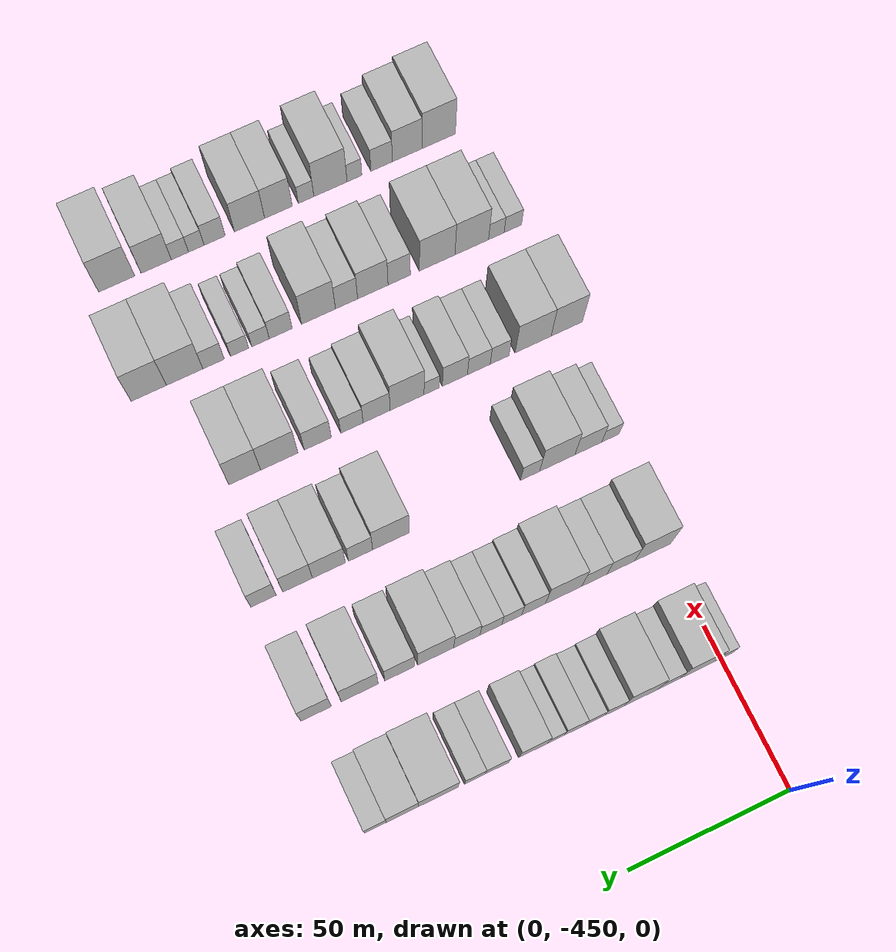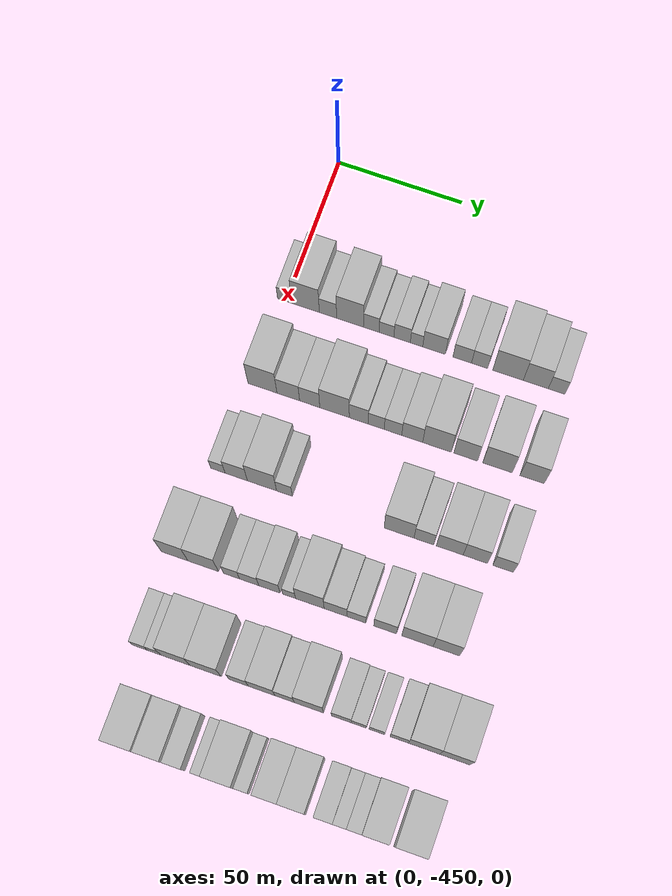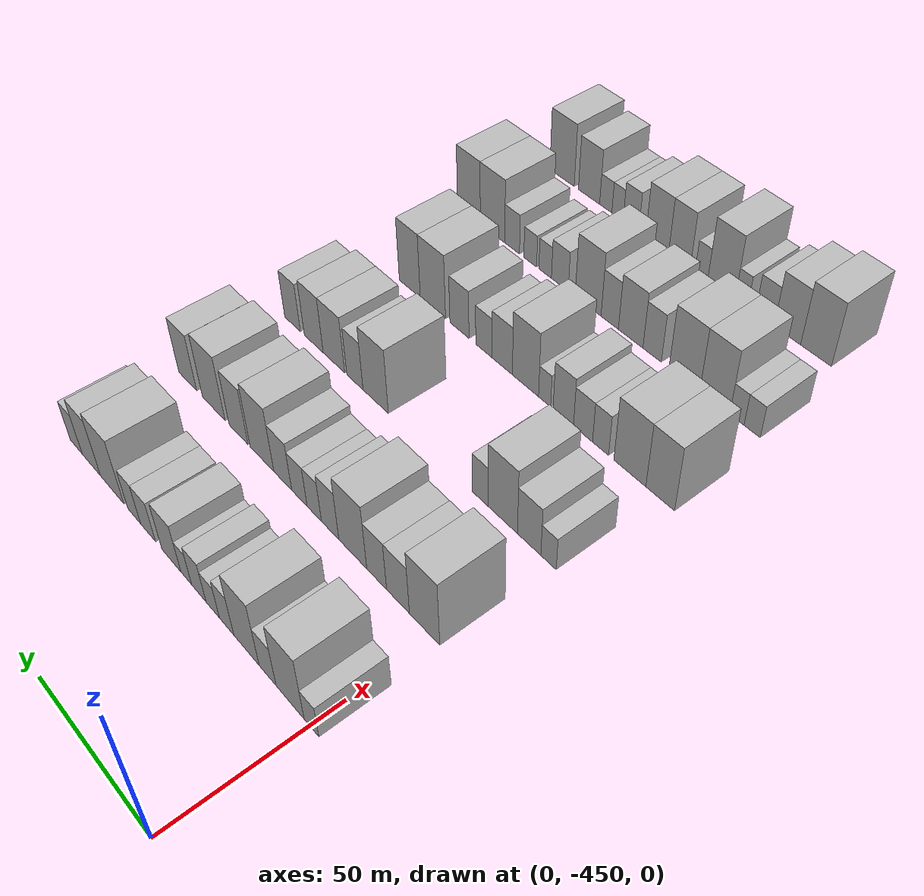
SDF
<sdf version="1.6">
 <world name="default">
  <model name="building_14">
   <static>1</static>
   <pose>50.0000 -450.5928 0 0.000000 0.000000 0.000000</pose>
   <link name="link">
    <pose>0 0 6.00 0 0 0</pose>
    <collision name="collision"><geometry><box><size>20.0000 5.6410 12.0000</size></box></geometry></collision>
    <visual name="visual">
     <cast_shadows>0</cast_shadows>
     <geometry><box><size>20.0000 5.6410 12.0000</size></box></geometry>
     <material>
      <script>
       <uri>model://HANNAS_wall/materials/scripts</uri>
       <uri>model://HANNAS_wall/materials/textures</uri>
       <name>vrc/HANNAS_wall</name>
      </script>
     </material>
    </visual>
   </link>
  </model>
  <model name="building_15">
   <static>1</static>
   <pose>50.0000 -442.2257 0 0.000000 0.000000 0.000000</pose>
   <link name="link">
    <pose>0 0 12.00 0 0 0</pose>
    <collision name="collision"><geometry><box><size>20.0000 11.0932 24.0000</size></box></geometry></collision>
    <visual name="visual">
     <cast_shadows>0</cast_shadows>
     <geometry><box><size>20.0000 11.0932 24.0000</size></box></geometry>
     <material>
      <script>
       <uri>model://HANNAS_wall/materials/scripts</uri>
       <uri>model://HANNAS_wall/materials/textures</uri>
       <name>vrc/HANNAS_wall</name>
      </script>
     </material>
    </visual>
   </link>
  </model>
  <model name="building_16">
   <static>1</static>
   <pose>50.0000 -433.2365 0 0.000000 0.000000 0.000000</pose>
   <link name="link">
    <pose>0 0 7.50 0 0 0</pose>
    <collision name="collision"><geometry><box><size>20.0000 6.8852 15.0000</size></box></geometry></collision>
    <visual name="visual">
     <cast_shadows>0</cast_shadows>
     <geometry><box><size>20.0000 6.8852 15.0000</size></box></geometry>
     <material>
      <script>
       <uri>model://HANNAS_wall/materials/scripts</uri>
       <uri>model://HANNAS_wall/materials/textures</uri>
       <name>vrc/HANNAS_wall</name>
      </script>
     </material>
    </visual>
   </link>
  </model>
  <model name="building_17">
   <static>1</static>
   <pose>50.0000 -424.4515 0 0.000000 0.000000 0.000000</pose>
   <link name="link">
    <pose>0 0 12.00 0 0 0</pose>
    <collision name="collision"><geometry><box><size>20.0000 10.6849 24.0000</size></box></geometry></collision>
    <visual name="visual">
     <cast_shadows>0</cast_shadows>
     <geometry><box><size>20.0000 10.6849 24.0000</size></box></geometry>
     <material>
      <script>
       <uri>model://HANNAS_wall/materials/scripts</uri>
       <uri>model://HANNAS_wall/materials/textures</uri>
       <name>vrc/HANNAS_wall</name>
      </script>
     </material>
    </visual>
   </link>
  </model>
  <model name="building_18">
   <static>1</static>
   <pose>50.0000 -416.0181 0 0.000000 0.000000 0.000000</pose>
   <link name="link">
    <pose>0 0 7.50 0 0 0</pose>
    <collision name="collision"><geometry><box><size>20.0000 6.1817 15.0000</size></box></geometry></collision>
    <visual name="visual">
     <cast_shadows>0</cast_shadows>
     <geometry><box><size>20.0000 6.1817 15.0000</size></box></geometry>
     <material>
      <script>
       <uri>model://HANNAS_wall/materials/scripts</uri>
       <uri>model://HANNAS_wall/materials/textures</uri>
       <name>vrc/HANNAS_wall</name>
      </script>
     </material>
    </visual>
   </link>
  </model>
  <model name="building_19">
   <static>1</static>
   <pose>50.0000 -409.9744 0 0.000000 0.000000 0.000000</pose>
   <link name="link">
    <pose>0 0 6.00 0 0 0</pose>
    <collision name="collision"><geometry><box><size>20.0000 5.9059 12.0000</size></box></geometry></collision>
    <visual name="visual">
     <cast_shadows>0</cast_shadows>
     <geometry><box><size>20.0000 5.9059 12.0000</size></box></geometry>
     <material>
      <script>
       <uri>model://HANNAS_wall/materials/scripts</uri>
       <uri>model://HANNAS_wall/materials/textures</uri>
       <name>vrc/HANNAS_wall</name>
      </script>
     </material>
    </visual>
   </link>
  </model>
  <model name="building_20">
   <static>1</static>
   <pose>50.0000 -403.7748 0 0.000000 0.000000 0.000000</pose>
   <link name="link">
    <pose>0 0 7.50 0 0 0</pose>
    <collision name="collision"><geometry><box><size>20.0000 6.4932 15.0000</size></box></geometry></collision>
    <visual name="visual">
     <cast_shadows>0</cast_shadows>
     <geometry><box><size>20.0000 6.4932 15.0000</size></box></geometry>
     <material>
      <script>
       <uri>model://HANNAS_wall/materials/scripts</uri>
       <uri>model://HANNAS_wall/materials/textures</uri>
       <name>vrc/HANNAS_wall</name>
      </script>
     </material>
    </visual>
   </link>
  </model>
  <model name="building_21">
   <static>1</static>
   <pose>50.0000 -398.0769 0 0.000000 0.000000 0.000000</pose>
   <link name="link">
    <pose>0 0 6.00 0 0 0</pose>
    <collision name="collision"><geometry><box><size>20.0000 4.9025 12.0000</size></box></geometry></collision>
    <visual name="visual">
     <cast_shadows>0</cast_shadows>
     <geometry><box><size>20.0000 4.9025 12.0000</size></box></geometry>
     <material>
      <script>
       <uri>model://HANNAS_wall/materials/scripts</uri>
       <uri>model://HANNAS_wall/materials/textures</uri>
       <name>vrc/HANNAS_wall</name>
      </script>
     </material>
    </visual>
   </link>
  </model>
  <model name="building_22">
   <static>1</static>
   <pose>50.0000 -391.1550 0 0.000000 0.000000 0.000000</pose>
   <link name="link">
    <pose>0 0 9.00 0 0 0</pose>
    <collision name="collision"><geometry><box><size>20.0000 8.9414 18.0000</size></box></geometry></collision>
    <visual name="visual">
     <cast_shadows>0</cast_shadows>
     <geometry><box><size>20.0000 8.9414 18.0000</size></box></geometry>
     <material>
      <script>
       <uri>model://HANNAS_wall/materials/scripts</uri>
       <uri>model://HANNAS_wall/materials/textures</uri>
       <name>vrc/HANNAS_wall</name>
      </script>
     </material>
    </visual>
   </link>
  </model>
  <model name="building_23">
   <static>1</static>
   <pose>50.0000 -380.0222 0 0.000000 0.000000 0.000000</pose>
   <link name="link">
    <pose>0 0 7.50 0 0 0</pose>
    <collision name="collision"><geometry><box><size>20.0000 7.3244 15.0000</size></box></geometry></collision>
    <visual name="visual">
     <cast_shadows>0</cast_shadows>
     <geometry><box><size>20.0000 7.3244 15.0000</size></box></geometry>
     <material>
      <script>
       <uri>model://HANNAS_wall/materials/scripts</uri>
       <uri>model://HANNAS_wall/materials/textures</uri>
       <name>vrc/HANNAS_wall</name>
      </script>
     </material>
    </visual>
   </link>
  </model>
  <model name="building_24">
   <static>1</static>
   <pose>50.0000 -373.2017 0 0.000000 0.000000 0.000000</pose>
   <link name="link">
    <pose>0 0 7.50 0 0 0</pose>
    <collision name="collision"><geometry><box><size>20.0000 6.3165 15.0000</size></box></geometry></collision>
    <visual name="visual">
     <cast_shadows>0</cast_shadows>
     <geometry><box><size>20.0000 6.3165 15.0000</size></box></geometry>
     <material>
      <script>
       <uri>model://HANNAS_wall/materials/scripts</uri>
       <uri>model://HANNAS_wall/materials/textures</uri>
       <name>vrc/HANNAS_wall</name>
      </script>
     </material>
    </visual>
   </link>
  </model>
  <model name="building_25">
   <static>1</static>
   <pose>50.0000 -362.0631 0 0.000000 0.000000 0.000000</pose>
   <link name="link">
    <pose>0 0 12.00 0 0 0</pose>
    <collision name="collision"><geometry><box><size>20.0000 11.9609 24.0000</size></box></geometry></collision>
    <visual name="visual">
     <cast_shadows>0</cast_shadows>
     <geometry><box><size>20.0000 11.9609 24.0000</size></box></geometry>
     <material>
      <script>
       <uri>model://HANNAS_wall/materials/scripts</uri>
       <uri>model://HANNAS_wall/materials/textures</uri>
       <name>vrc/HANNAS_wall</name>
      </script>
     </material>
    </visual>
   </link>
  </model>
  <model name="building_26">
   <static>1</static>
   <pose>50.0000 -351.2172 0 0.000000 0.000000 0.000000</pose>
   <link name="link">
    <pose>0 0 10.50 0 0 0</pose>
    <collision name="collision"><geometry><box><size>20.0000 9.7309 21.0000</size></box></geometry></collision>
    <visual name="visual">
     <cast_shadows>0</cast_shadows>
     <geometry><box><size>20.0000 9.7309 21.0000</size></box></geometry>
     <material>
      <script>
       <uri>model://HANNAS_wall/materials/scripts</uri>
       <uri>model://HANNAS_wall/materials/textures</uri>
       <name>vrc/HANNAS_wall</name>
      </script>
     </material>
    </visual>
   </link>
  </model>
  <model name="building_27">
   <static>1</static>
   <pose>50.0000 -343.0850 0 0.000000 0.000000 0.000000</pose>
   <link name="link">
    <pose>0 0 7.50 0 0 0</pose>
    <collision name="collision"><geometry><box><size>20.0000 6.5336 15.0000</size></box></geometry></collision>
    <visual name="visual">
     <cast_shadows>0</cast_shadows>
     <geometry><box><size>20.0000 6.5336 15.0000</size></box></geometry>
     <material>
      <script>
       <uri>model://HANNAS_wall/materials/scripts</uri>
       <uri>model://HANNAS_wall/materials/textures</uri>
       <name>vrc/HANNAS_wall</name>
      </script>
     </material>
    </visual>
   </link>
  </model>
  <model name="building_144">
   <static>1</static>
   <pose>85.0000 -446.5937 0 0.000000 0.000000 0.000000</pose>
   <link name="link">
    <pose>0 0 12.00 0 0 0</pose>
    <collision name="collision"><geometry><box><size>20.0000 11.4629 24.0000</size></box></geometry></collision>
    <visual name="visual">
     <cast_shadows>0</cast_shadows>
     <geometry><box><size>20.0000 11.4629 24.0000</size></box></geometry>
     <material>
      <script>
       <uri>model://HANNAS_wall/materials/scripts</uri>
       <uri>model://HANNAS_wall/materials/textures</uri>
       <name>vrc/HANNAS_wall</name>
      </script>
     </material>
    </visual>
   </link>
  </model>
  <model name="building_145">
   <static>1</static>
   <pose>85.0000 -436.4054 0 0.000000 0.000000 0.000000</pose>
   <link name="link">
    <pose>0 0 9.00 0 0 0</pose>
    <collision name="collision"><geometry><box><size>20.0000 8.9136 18.0000</size></box></geometry></collision>
    <visual name="visual">
     <cast_shadows>0</cast_shadows>
     <geometry><box><size>20.0000 8.9136 18.0000</size></box></geometry>
     <material>
      <script>
       <uri>model://HANNAS_wall/materials/scripts</uri>
       <uri>model://HANNAS_wall/materials/textures</uri>
       <name>vrc/HANNAS_wall</name>
      </script>
     </material>
    </visual>
   </link>
  </model>
  <model name="building_146">
   <static>1</static>
   <pose>85.0000 -427.9742 0 0.000000 0.000000 0.000000</pose>
   <link name="link">
    <pose>0 0 9.00 0 0 0</pose>
    <collision name="collision"><geometry><box><size>20.0000 7.9489 18.0000</size></box></geometry></collision>
    <visual name="visual">
     <cast_shadows>0</cast_shadows>
     <geometry><box><size>20.0000 7.9489 18.0000</size></box></geometry>
     <material>
      <script>
       <uri>model://HANNAS_wall/materials/scripts</uri>
       <uri>model://HANNAS_wall/materials/textures</uri>
       <name>vrc/HANNAS_wall</name>
      </script>
     </material>
    </visual>
   </link>
  </model>
  <model name="building_147">
   <static>1</static>
   <pose>85.0000 -418.2193 0 0.000000 0.000000 0.000000</pose>
   <link name="link">
    <pose>0 0 12.00 0 0 0</pose>
    <collision name="collision"><geometry><box><size>20.0000 11.5608 24.0000</size></box></geometry></collision>
    <visual name="visual">
     <cast_shadows>0</cast_shadows>
     <geometry><box><size>20.0000 11.5608 24.0000</size></box></geometry>
     <material>
      <script>
       <uri>model://HANNAS_wall/materials/scripts</uri>
       <uri>model://HANNAS_wall/materials/textures</uri>
       <name>vrc/HANNAS_wall</name>
      </script>
     </material>
    </visual>
   </link>
  </model>
  <model name="building_148">
   <static>1</static>
   <pose>85.0000 -408.7284 0 0.000000 0.000000 0.000000</pose>
   <link name="link">
    <pose>0 0 9.00 0 0 0</pose>
    <collision name="collision"><geometry><box><size>20.0000 7.4210 18.0000</size></box></geometry></collision>
    <visual name="visual">
     <cast_shadows>0</cast_shadows>
     <geometry><box><size>20.0000 7.4210 18.0000</size></box></geometry>
     <material>
      <script>
       <uri>model://HANNAS_wall/materials/scripts</uri>
       <uri>model://HANNAS_wall/materials/textures</uri>
       <name>vrc/HANNAS_wall</name>
      </script>
     </material>
    </visual>
   </link>
  </model>
  <model name="building_149">
   <static>1</static>
   <pose>85.0000 -401.8857 0 0.000000 0.000000 0.000000</pose>
   <link name="link">
    <pose>0 0 7.50 0 0 0</pose>
    <collision name="collision"><geometry><box><size>20.0000 6.2645 15.0000</size></box></geometry></collision>
    <visual name="visual">
     <cast_shadows>0</cast_shadows>
     <geometry><box><size>20.0000 6.2645 15.0000</size></box></geometry>
     <material>
      <script>
       <uri>model://HANNAS_wall/materials/scripts</uri>
       <uri>model://HANNAS_wall/materials/textures</uri>
       <name>vrc/HANNAS_wall</name>
      </script>
     </material>
    </visual>
   </link>
  </model>
  <model name="building_150">
   <static>1</static>
   <pose>85.0000 -395.3337 0 0.000000 0.000000 0.000000</pose>
   <link name="link">
    <pose>0 0 7.50 0 0 0</pose>
    <collision name="collision"><geometry><box><size>20.0000 6.8396 15.0000</size></box></geometry></collision>
    <visual name="visual">
     <cast_shadows>0</cast_shadows>
     <geometry><box><size>20.0000 6.8396 15.0000</size></box></geometry>
     <material>
      <script>
       <uri>model://HANNAS_wall/materials/scripts</uri>
       <uri>model://HANNAS_wall/materials/textures</uri>
       <name>vrc/HANNAS_wall</name>
      </script>
     </material>
    </visual>
   </link>
  </model>
  <model name="building_151">
   <static>1</static>
   <pose>85.0000 -387.8292 0 0.000000 0.000000 0.000000</pose>
   <link name="link">
    <pose>0 0 9.00 0 0 0</pose>
    <collision name="collision"><geometry><box><size>20.0000 8.1693 18.0000</size></box></geometry></collision>
    <visual name="visual">
     <cast_shadows>0</cast_shadows>
     <geometry><box><size>20.0000 8.1693 18.0000</size></box></geometry>
     <material>
      <script>
       <uri>model://HANNAS_wall/materials/scripts</uri>
       <uri>model://HANNAS_wall/materials/textures</uri>
       <name>vrc/HANNAS_wall</name>
      </script>
     </material>
    </visual>
   </link>
  </model>
  <model name="building_152">
   <static>1</static>
   <pose>85.0000 -378.1938 0 0.000000 0.000000 0.000000</pose>
   <link name="link">
    <pose>0 0 12.00 0 0 0</pose>
    <collision name="collision"><geometry><box><size>20.0000 11.1014 24.0000</size></box></geometry></collision>
    <visual name="visual">
     <cast_shadows>0</cast_shadows>
     <geometry><box><size>20.0000 11.1014 24.0000</size></box></geometry>
     <material>
      <script>
       <uri>model://HANNAS_wall/materials/scripts</uri>
       <uri>model://HANNAS_wall/materials/textures</uri>
       <name>vrc/HANNAS_wall</name>
      </script>
     </material>
    </visual>
   </link>
  </model>
  <model name="building_153">
   <static>1</static>
   <pose>85.0000 -367.0574 0 0.000000 0.000000 0.000000</pose>
   <link name="link">
    <pose>0 0 10.50 0 0 0</pose>
    <collision name="collision"><geometry><box><size>20.0000 9.1714 21.0000</size></box></geometry></collision>
    <visual name="visual">
     <cast_shadows>0</cast_shadows>
     <geometry><box><size>20.0000 9.1714 21.0000</size></box></geometry>
     <material>
      <script>
       <uri>model://HANNAS_wall/materials/scripts</uri>
       <uri>model://HANNAS_wall/materials/textures</uri>
       <name>vrc/HANNAS_wall</name>
      </script>
     </material>
    </visual>
   </link>
  </model>
  <model name="building_154">
   <static>1</static>
   <pose>85.0000 -354.7837 0 0.000000 0.000000 0.000000</pose>
   <link name="link">
    <pose>0 0 12.00 0 0 0</pose>
    <collision name="collision"><geometry><box><size>20.0000 11.3760 24.0000</size></box></geometry></collision>
    <visual name="visual">
     <cast_shadows>0</cast_shadows>
     <geometry><box><size>20.0000 11.3760 24.0000</size></box></geometry>
     <material>
      <script>
       <uri>model://HANNAS_wall/materials/scripts</uri>
       <uri>model://HANNAS_wall/materials/textures</uri>
       <name>vrc/HANNAS_wall</name>
      </script>
     </material>
    </visual>
   </link>
  </model>
  <model name="building_155">
   <static>1</static>
   <pose>85.0000 -341.4377 0 0.000000 0.000000 0.000000</pose>
   <link name="link">
    <pose>0 0 10.50 0 0 0</pose>
    <collision name="collision"><geometry><box><size>20.0000 9.3159 21.0000</size></box></geometry></collision>
    <visual name="visual">
     <cast_shadows>0</cast_shadows>
     <geometry><box><size>20.0000 9.3159 21.0000</size></box></geometry>
     <material>
      <script>
       <uri>model://HANNAS_wall/materials/scripts</uri>
       <uri>model://HANNAS_wall/materials/textures</uri>
       <name>vrc/HANNAS_wall</name>
      </script>
     </material>
    </visual>
   </link>
  </model>
  <model name="building_255">
   <static>1</static>
   <pose>120.0000 -451.1449 0 0.000000 0.000000 0.000000</pose>
   <link name="link">
    <pose>0 0 6.00 0 0 0</pose>
    <collision name="collision"><geometry><box><size>20.0000 5.6046 12.0000</size></box></geometry></collision>
    <visual name="visual">
     <cast_shadows>0</cast_shadows>
     <geometry><box><size>20.0000 5.6046 12.0000</size></box></geometry>
     <material>
      <script>
       <uri>model://HANNAS_wall/materials/scripts</uri>
       <uri>model://HANNAS_wall/materials/textures</uri>
       <name>vrc/HANNAS_wall</name>
      </script>
     </material>
    </visual>
   </link>
  </model>
  <model name="building_256">
   <static>1</static>
   <pose>120.0000 -443.9745 0 0.000000 0.000000 0.000000</pose>
   <link name="link">
    <pose>0 0 9.00 0 0 0</pose>
    <collision name="collision"><geometry><box><size>20.0000 8.7362 18.0000</size></box></geometry></collision>
    <visual name="visual">
     <cast_shadows>0</cast_shadows>
     <geometry><box><size>20.0000 8.7362 18.0000</size></box></geometry>
     <material>
      <script>
       <uri>model://HANNAS_wall/materials/scripts</uri>
       <uri>model://HANNAS_wall/materials/textures</uri>
       <name>vrc/HANNAS_wall</name>
      </script>
     </material>
    </visual>
   </link>
  </model>
  <model name="building_257">
   <static>1</static>
   <pose>120.0000 -433.9365 0 0.000000 0.000000 0.000000</pose>
   <link name="link">
    <pose>0 0 12.00 0 0 0</pose>
    <collision name="collision"><geometry><box><size>20.0000 11.3397 24.0000</size></box></geometry></collision>
    <visual name="visual">
     <cast_shadows>0</cast_shadows>
     <geometry><box><size>20.0000 11.3397 24.0000</size></box></geometry>
     <material>
      <script>
       <uri>model://HANNAS_wall/materials/scripts</uri>
       <uri>model://HANNAS_wall/materials/textures</uri>
       <name>vrc/HANNAS_wall</name>
      </script>
     </material>
    </visual>
   </link>
  </model>
  <model name="building_258">
   <static>1</static>
   <pose>120.0000 -425.1990 0 0.000000 0.000000 0.000000</pose>
   <link name="link">
    <pose>0 0 7.50 0 0 0</pose>
    <collision name="collision"><geometry><box><size>20.0000 6.1353 15.0000</size></box></geometry></collision>
    <visual name="visual">
     <cast_shadows>0</cast_shadows>
     <geometry><box><size>20.0000 6.1353 15.0000</size></box></geometry>
     <material>
      <script>
       <uri>model://HANNAS_wall/materials/scripts</uri>
       <uri>model://HANNAS_wall/materials/textures</uri>
       <name>vrc/HANNAS_wall</name>
      </script>
     </material>
    </visual>
   </link>
  </model>
  <model name="building_259">
   <static>1</static>
   <pose>120.0000 -380.9547 0 0.000000 0.000000 0.000000</pose>
   <link name="link">
    <pose>0 0 12.00 0 0 0</pose>
    <collision name="collision"><geometry><box><size>20.0000 11.4512 24.0000</size></box></geometry></collision>
    <visual name="visual">
     <cast_shadows>0</cast_shadows>
     <geometry><box><size>20.0000 11.4512 24.0000</size></box></geometry>
     <material>
      <script>
       <uri>model://HANNAS_wall/materials/scripts</uri>
       <uri>model://HANNAS_wall/materials/textures</uri>
       <name>vrc/HANNAS_wall</name>
      </script>
     </material>
    </visual>
   </link>
  </model>
  <model name="building_260">
   <static>1</static>
   <pose>120.0000 -371.4617 0 0.000000 0.000000 0.000000</pose>
   <link name="link">
    <pose>0 0 9.00 0 0 0</pose>
    <collision name="collision"><geometry><box><size>20.0000 7.5347 18.0000</size></box></geometry></collision>
    <visual name="visual">
     <cast_shadows>0</cast_shadows>
     <geometry><box><size>20.0000 7.5347 18.0000</size></box></geometry>
     <material>
      <script>
       <uri>model://HANNAS_wall/materials/scripts</uri>
       <uri>model://HANNAS_wall/materials/textures</uri>
       <name>vrc/HANNAS_wall</name>
      </script>
     </material>
    </visual>
   </link>
  </model>
  <model name="building_261">
   <static>1</static>
   <pose>120.0000 -361.5631 0 0.000000 0.000000 0.000000</pose>
   <link name="link">
    <pose>0 0 10.50 0 0 0</pose>
    <collision name="collision"><geometry><box><size>20.0000 10.2625 21.0000</size></box></geometry></collision>
    <visual name="visual">
     <cast_shadows>0</cast_shadows>
     <geometry><box><size>20.0000 10.2625 21.0000</size></box></geometry>
     <material>
      <script>
       <uri>model://HANNAS_wall/materials/scripts</uri>
       <uri>model://HANNAS_wall/materials/textures</uri>
       <name>vrc/HANNAS_wall</name>
      </script>
     </material>
    </visual>
   </link>
  </model>
  <model name="building_262">
   <static>1</static>
   <pose>120.0000 -351.8129 0 0.000000 0.000000 0.000000</pose>
   <link name="link">
    <pose>0 0 10.50 0 0 0</pose>
    <collision name="collision"><geometry><box><size>20.0000 9.2379 21.0000</size></box></geometry></collision>
    <visual name="visual">
     <cast_shadows>0</cast_shadows>
     <geometry><box><size>20.0000 9.2379 21.0000</size></box></geometry>
     <material>
      <script>
       <uri>model://HANNAS_wall/materials/scripts</uri>
       <uri>model://HANNAS_wall/materials/textures</uri>
       <name>vrc/HANNAS_wall</name>
      </script>
     </material>
    </visual>
   </link>
  </model>
  <model name="building_263">
   <static>1</static>
   <pose>120.0000 -341.2696 0 0.000000 0.000000 0.000000</pose>
   <link name="link">
    <pose>0 0 9.00 0 0 0</pose>
    <collision name="collision"><geometry><box><size>20.0000 7.8487 18.0000</size></box></geometry></collision>
    <visual name="visual">
     <cast_shadows>0</cast_shadows>
     <geometry><box><size>20.0000 7.8487 18.0000</size></box></geometry>
     <material>
      <script>
       <uri>model://HANNAS_wall/materials/scripts</uri>
       <uri>model://HANNAS_wall/materials/textures</uri>
       <name>vrc/HANNAS_wall</name>
      </script>
     </material>
    </visual>
   </link>
  </model>
  <model name="building_376">
   <static>1</static>
   <pose>155.0000 -454.7123 0 0.000000 0.000000 0.000000</pose>
   <link name="link">
    <pose>0 0 12.00 0 0 0</pose>
    <collision name="collision"><geometry><box><size>20.0000 10.2747 24.0000</size></box></geometry></collision>
    <visual name="visual">
     <cast_shadows>0</cast_shadows>
     <geometry><box><size>20.0000 10.2747 24.0000</size></box></geometry>
     <material>
      <script>
       <uri>model://HANNAS_wall/materials/scripts</uri>
       <uri>model://HANNAS_wall/materials/textures</uri>
       <name>vrc/HANNAS_wall</name>
      </script>
     </material>
    </visual>
   </link>
  </model>
  <model name="building_377">
   <static>1</static>
   <pose>155.0000 -443.6824 0 0.000000 0.000000 0.000000</pose>
   <link name="link">
    <pose>0 0 12.00 0 0 0</pose>
    <collision name="collision"><geometry><box><size>20.0000 11.7852 24.0000</size></box></geometry></collision>
    <visual name="visual">
     <cast_shadows>0</cast_shadows>
     <geometry><box><size>20.0000 11.7852 24.0000</size></box></geometry>
     <material>
      <script>
       <uri>model://HANNAS_wall/materials/scripts</uri>
       <uri>model://HANNAS_wall/materials/textures</uri>
       <name>vrc/HANNAS_wall</name>
      </script>
     </material>
    </visual>
   </link>
  </model>
  <model name="building_378">
   <static>1</static>
   <pose>155.0000 -432.7246 0 0.000000 0.000000 0.000000</pose>
   <link name="link">
    <pose>0 0 7.50 0 0 0</pose>
    <collision name="collision"><geometry><box><size>20.0000 6.1304 15.0000</size></box></geometry></collision>
    <visual name="visual">
     <cast_shadows>0</cast_shadows>
     <geometry><box><size>20.0000 6.1304 15.0000</size></box></geometry>
     <material>
      <script>
       <uri>model://HANNAS_wall/materials/scripts</uri>
       <uri>model://HANNAS_wall/materials/textures</uri>
       <name>vrc/HANNAS_wall</name>
      </script>
     </material>
    </visual>
   </link>
  </model>
  <model name="building_379">
   <static>1</static>
   <pose>155.0000 -425.9634 0 0.000000 0.000000 0.000000</pose>
   <link name="link">
    <pose>0 0 7.50 0 0 0</pose>
    <collision name="collision"><geometry><box><size>20.0000 7.3920 15.0000</size></box></geometry></collision>
    <visual name="visual">
     <cast_shadows>0</cast_shadows>
     <geometry><box><size>20.0000 7.3920 15.0000</size></box></geometry>
     <material>
      <script>
       <uri>model://HANNAS_wall/materials/scripts</uri>
       <uri>model://HANNAS_wall/materials/textures</uri>
       <name>vrc/HANNAS_wall</name>
      </script>
     </material>
    </visual>
   </link>
  </model>
  <model name="building_380">
   <static>1</static>
   <pose>155.0000 -418.2074 0 0.000000 0.000000 0.000000</pose>
   <link name="link">
    <pose>0 0 9.00 0 0 0</pose>
    <collision name="collision"><geometry><box><size>20.0000 8.1200 18.0000</size></box></geometry></collision>
    <visual name="visual">
     <cast_shadows>0</cast_shadows>
     <geometry><box><size>20.0000 8.1200 18.0000</size></box></geometry>
     <material>
      <script>
       <uri>model://HANNAS_wall/materials/scripts</uri>
       <uri>model://HANNAS_wall/materials/textures</uri>
       <name>vrc/HANNAS_wall</name>
      </script>
     </material>
    </visual>
   </link>
  </model>
  <model name="building_381">
   <static>1</static>
   <pose>155.0000 -410.6882 0 0.000000 0.000000 0.000000</pose>
   <link name="link">
    <pose>0 0 6.00 0 0 0</pose>
    <collision name="collision"><geometry><box><size>20.0000 4.9184 12.0000</size></box></geometry></collision>
    <visual name="visual">
     <cast_shadows>0</cast_shadows>
     <geometry><box><size>20.0000 4.9184 12.0000</size></box></geometry>
     <material>
      <script>
       <uri>model://HANNAS_wall/materials/scripts</uri>
       <uri>model://HANNAS_wall/materials/textures</uri>
       <name>vrc/HANNAS_wall</name>
      </script>
     </material>
    </visual>
   </link>
  </model>
  <model name="building_382">
   <static>1</static>
   <pose>155.0000 -402.7854 0 0.000000 0.000000 0.000000</pose>
   <link name="link">
    <pose>0 0 12.00 0 0 0</pose>
    <collision name="collision"><geometry><box><size>20.0000 10.8872 24.0000</size></box></geometry></collision>
    <visual name="visual">
     <cast_shadows>0</cast_shadows>
     <geometry><box><size>20.0000 10.8872 24.0000</size></box></geometry>
     <material>
      <script>
       <uri>model://HANNAS_wall/materials/scripts</uri>
       <uri>model://HANNAS_wall/materials/textures</uri>
       <name>vrc/HANNAS_wall</name>
      </script>
     </material>
    </visual>
   </link>
  </model>
  <model name="building_383">
   <static>1</static>
   <pose>155.0000 -393.0057 0 0.000000 0.000000 0.000000</pose>
   <link name="link">
    <pose>0 0 9.00 0 0 0</pose>
    <collision name="collision"><geometry><box><size>20.0000 8.6722 18.0000</size></box></geometry></collision>
    <visual name="visual">
     <cast_shadows>0</cast_shadows>
     <geometry><box><size>20.0000 8.6722 18.0000</size></box></geometry>
     <material>
      <script>
       <uri>model://HANNAS_wall/materials/scripts</uri>
       <uri>model://HANNAS_wall/materials/textures</uri>
       <name>vrc/HANNAS_wall</name>
      </script>
     </material>
    </visual>
   </link>
  </model>
  <model name="building_384">
   <static>1</static>
   <pose>155.0000 -385.1058 0 0.000000 0.000000 0.000000</pose>
   <link name="link">
    <pose>0 0 7.50 0 0 0</pose>
    <collision name="collision"><geometry><box><size>20.0000 7.1275 15.0000</size></box></geometry></collision>
    <visual name="visual">
     <cast_shadows>0</cast_shadows>
     <geometry><box><size>20.0000 7.1275 15.0000</size></box></geometry>
     <material>
      <script>
       <uri>model://HANNAS_wall/materials/scripts</uri>
       <uri>model://HANNAS_wall/materials/textures</uri>
       <name>vrc/HANNAS_wall</name>
      </script>
     </material>
    </visual>
   </link>
  </model>
  <model name="building_385">
   <static>1</static>
   <pose>155.0000 -374.2365 0 0.000000 0.000000 0.000000</pose>
   <link name="link">
    <pose>0 0 9.00 0 0 0</pose>
    <collision name="collision"><geometry><box><size>20.0000 8.6112 18.0000</size></box></geometry></collision>
    <visual name="visual">
     <cast_shadows>0</cast_shadows>
     <geometry><box><size>20.0000 8.6112 18.0000</size></box></geometry>
     <material>
      <script>
       <uri>model://HANNAS_wall/materials/scripts</uri>
       <uri>model://HANNAS_wall/materials/textures</uri>
       <name>vrc/HANNAS_wall</name>
      </script>
     </material>
    </visual>
   </link>
  </model>
  <model name="building_386">
   <static>1</static>
   <pose>155.0000 -362.0347 0 0.000000 0.000000 0.000000</pose>
   <link name="link">
    <pose>0 0 12.00 0 0 0</pose>
    <collision name="collision"><geometry><box><size>20.0000 11.7925 24.0000</size></box></geometry></collision>
    <visual name="visual">
     <cast_shadows>0</cast_shadows>
     <geometry><box><size>20.0000 11.7925 24.0000</size></box></geometry>
     <material>
      <script>
       <uri>model://HANNAS_wall/materials/scripts</uri>
       <uri>model://HANNAS_wall/materials/textures</uri>
       <name>vrc/HANNAS_wall</name>
      </script>
     </material>
    </visual>
   </link>
  </model>
  <model name="building_387">
   <static>1</static>
   <pose>155.0000 -351.1388 0 0.000000 0.000000 0.000000</pose>
   <link name="link">
    <pose>0 0 12.00 0 0 0</pose>
    <collision name="collision"><geometry><box><size>20.0000 9.9992 24.0000</size></box></geometry></collision>
    <visual name="visual">
     <cast_shadows>0</cast_shadows>
     <geometry><box><size>20.0000 9.9992 24.0000</size></box></geometry>
     <material>
      <script>
       <uri>model://HANNAS_wall/materials/scripts</uri>
       <uri>model://HANNAS_wall/materials/textures</uri>
       <name>vrc/HANNAS_wall</name>
      </script>
     </material>
    </visual>
   </link>
  </model>
  <model name="building_498">
   <static>1</static>
   <pose>190.0000 -454.4238 0 0.000000 0.000000 0.000000</pose>
   <link name="link">
    <pose>0 0 6.00 0 0 0</pose>
    <collision name="collision"><geometry><box><size>20.0000 5.7596 12.0000</size></box></geometry></collision>
    <visual name="visual">
     <cast_shadows>0</cast_shadows>
     <geometry><box><size>20.0000 5.7596 12.0000</size></box></geometry>
     <material>
      <script>
       <uri>model://HANNAS_wall/materials/scripts</uri>
       <uri>model://HANNAS_wall/materials/textures</uri>
       <name>vrc/HANNAS_wall</name>
      </script>
     </material>
    </visual>
   </link>
  </model>
  <model name="building_499">
   <static>1</static>
   <pose>190.0000 -448.9564 0 0.000000 0.000000 0.000000</pose>
   <link name="link">
    <pose>0 0 6.00 0 0 0</pose>
    <collision name="collision"><geometry><box><size>20.0000 5.1751 12.0000</size></box></geometry></collision>
    <visual name="visual">
     <cast_shadows>0</cast_shadows>
     <geometry><box><size>20.0000 5.1751 12.0000</size></box></geometry>
     <material>
      <script>
       <uri>model://HANNAS_wall/materials/scripts</uri>
       <uri>model://HANNAS_wall/materials/textures</uri>
       <name>vrc/HANNAS_wall</name>
      </script>
     </material>
    </visual>
   </link>
  </model>
  <model name="building_500">
   <static>1</static>
   <pose>190.0000 -440.8129 0 0.000000 0.000000 0.000000</pose>
   <link name="link">
    <pose>0 0 12.00 0 0 0</pose>
    <collision name="collision"><geometry><box><size>20.0000 11.1120 24.0000</size></box></geometry></collision>
    <visual name="visual">
     <cast_shadows>0</cast_shadows>
     <geometry><box><size>20.0000 11.1120 24.0000</size></box></geometry>
     <material>
      <script>
       <uri>model://HANNAS_wall/materials/scripts</uri>
       <uri>model://HANNAS_wall/materials/textures</uri>
       <name>vrc/HANNAS_wall</name>
      </script>
     </material>
    </visual>
   </link>
  </model>
  <model name="building_501">
   <static>1</static>
   <pose>190.0000 -429.4022 0 0.000000 0.000000 0.000000</pose>
   <link name="link">
    <pose>0 0 12.00 0 0 0</pose>
    <collision name="collision"><geometry><box><size>20.0000 11.7095 24.0000</size></box></geometry></collision>
    <visual name="visual">
     <cast_shadows>0</cast_shadows>
     <geometry><box><size>20.0000 11.7095 24.0000</size></box></geometry>
     <material>
      <script>
       <uri>model://HANNAS_wall/materials/scripts</uri>
       <uri>model://HANNAS_wall/materials/textures</uri>
       <name>vrc/HANNAS_wall</name>
      </script>
     </material>
    </visual>
   </link>
  </model>
  <model name="building_502">
   <static>1</static>
   <pose>190.0000 -416.9068 0 0.000000 0.000000 0.000000</pose>
   <link name="link">
    <pose>0 0 9.00 0 0 0</pose>
    <collision name="collision"><geometry><box><size>20.0000 7.2812 18.0000</size></box></geometry></collision>
    <visual name="visual">
     <cast_shadows>0</cast_shadows>
     <geometry><box><size>20.0000 7.2812 18.0000</size></box></geometry>
     <material>
      <script>
       <uri>model://HANNAS_wall/materials/scripts</uri>
       <uri>model://HANNAS_wall/materials/textures</uri>
       <name>vrc/HANNAS_wall</name>
      </script>
     </material>
    </visual>
   </link>
  </model>
  <model name="building_503">
   <static>1</static>
   <pose>190.0000 -408.2940 0 0.000000 0.000000 0.000000</pose>
   <link name="link">
    <pose>0 0 10.50 0 0 0</pose>
    <collision name="collision"><geometry><box><size>20.0000 9.9443 21.0000</size></box></geometry></collision>
    <visual name="visual">
     <cast_shadows>0</cast_shadows>
     <geometry><box><size>20.0000 9.9443 21.0000</size></box></geometry>
     <material>
      <script>
       <uri>model://HANNAS_wall/materials/scripts</uri>
       <uri>model://HANNAS_wall/materials/textures</uri>
       <name>vrc/HANNAS_wall</name>
      </script>
     </material>
    </visual>
   </link>
  </model>
  <model name="building_504">
   <static>1</static>
   <pose>190.0000 -399.7198 0 0.000000 0.000000 0.000000</pose>
   <link name="link">
    <pose>0 0 9.00 0 0 0</pose>
    <collision name="collision"><geometry><box><size>20.0000 7.2041 18.0000</size></box></geometry></collision>
    <visual name="visual">
     <cast_shadows>0</cast_shadows>
     <geometry><box><size>20.0000 7.2041 18.0000</size></box></geometry>
     <material>
      <script>
       <uri>model://HANNAS_wall/materials/scripts</uri>
       <uri>model://HANNAS_wall/materials/textures</uri>
       <name>vrc/HANNAS_wall</name>
      </script>
     </material>
    </visual>
   </link>
  </model>
  <model name="building_505">
   <static>1</static>
   <pose>190.0000 -390.6186 0 0.000000 0.000000 0.000000</pose>
   <link name="link">
    <pose>0 0 12.00 0 0 0</pose>
    <collision name="collision"><geometry><box><size>20.0000 10.9984 24.0000</size></box></geometry></collision>
    <visual name="visual">
     <cast_shadows>0</cast_shadows>
     <geometry><box><size>20.0000 10.9984 24.0000</size></box></geometry>
     <material>
      <script>
       <uri>model://HANNAS_wall/materials/scripts</uri>
       <uri>model://HANNAS_wall/materials/textures</uri>
       <name>vrc/HANNAS_wall</name>
      </script>
     </material>
    </visual>
   </link>
  </model>
  <model name="building_506">
   <static>1</static>
   <pose>190.0000 -378.4301 0 0.000000 0.000000 0.000000</pose>
   <link name="link">
    <pose>0 0 7.50 0 0 0</pose>
    <collision name="collision"><geometry><box><size>20.0000 7.3786 15.0000</size></box></geometry></collision>
    <visual name="visual">
     <cast_shadows>0</cast_shadows>
     <geometry><box><size>20.0000 7.3786 15.0000</size></box></geometry>
     <material>
      <script>
       <uri>model://HANNAS_wall/materials/scripts</uri>
       <uri>model://HANNAS_wall/materials/textures</uri>
       <name>vrc/HANNAS_wall</name>
      </script>
     </material>
    </visual>
   </link>
  </model>
  <model name="building_507">
   <static>1</static>
   <pose>190.0000 -371.9300 0 0.000000 0.000000 0.000000</pose>
   <link name="link">
    <pose>0 0 6.00 0 0 0</pose>
    <collision name="collision"><geometry><box><size>20.0000 5.6215 12.0000</size></box></geometry></collision>
    <visual name="visual">
     <cast_shadows>0</cast_shadows>
     <geometry><box><size>20.0000 5.6215 12.0000</size></box></geometry>
     <material>
      <script>
       <uri>model://HANNAS_wall/materials/scripts</uri>
       <uri>model://HANNAS_wall/materials/textures</uri>
       <name>vrc/HANNAS_wall</name>
      </script>
     </material>
    </visual>
   </link>
  </model>
  <model name="building_508">
   <static>1</static>
   <pose>190.0000 -365.2112 0 0.000000 0.000000 0.000000</pose>
   <link name="link">
    <pose>0 0 6.00 0 0 0</pose>
    <collision name="collision"><geometry><box><size>20.0000 5.8161 12.0000</size></box></geometry></collision>
    <visual name="visual">
     <cast_shadows>0</cast_shadows>
     <geometry><box><size>20.0000 5.8161 12.0000</size></box></geometry>
     <material>
      <script>
       <uri>model://HANNAS_wall/materials/scripts</uri>
       <uri>model://HANNAS_wall/materials/textures</uri>
       <name>vrc/HANNAS_wall</name>
      </script>
     </material>
    </visual>
   </link>
  </model>
  <model name="building_509">
   <static>1</static>
   <pose>190.0000 -356.8786 0 0.000000 0.000000 0.000000</pose>
   <link name="link">
    <pose>0 0 7.50 0 0 0</pose>
    <collision name="collision"><geometry><box><size>20.0000 6.8492 15.0000</size></box></geometry></collision>
    <visual name="visual">
     <cast_shadows>0</cast_shadows>
     <geometry><box><size>20.0000 6.8492 15.0000</size></box></geometry>
     <material>
      <script>
       <uri>model://HANNAS_wall/materials/scripts</uri>
       <uri>model://HANNAS_wall/materials/textures</uri>
       <name>vrc/HANNAS_wall</name>
      </script>
     </material>
    </visual>
   </link>
  </model>
  <model name="building_510">
   <static>1</static>
   <pose>190.0000 -347.6498 0 0.000000 0.000000 0.000000</pose>
   <link name="link">
    <pose>0 0 12.00 0 0 0</pose>
    <collision name="collision"><geometry><box><size>20.0000 11.6083 24.0000</size></box></geometry></collision>
    <visual name="visual">
     <cast_shadows>0</cast_shadows>
     <geometry><box><size>20.0000 11.6083 24.0000</size></box></geometry>
     <material>
      <script>
       <uri>model://HANNAS_wall/materials/scripts</uri>
       <uri>model://HANNAS_wall/materials/textures</uri>
       <name>vrc/HANNAS_wall</name>
      </script>
     </material>
    </visual>
   </link>
  </model>
  <model name="building_511">
   <static>1</static>
   <pose>190.0000 -336.2783 0 0.000000 0.000000 0.000000</pose>
   <link name="link">
    <pose>0 0 12.00 0 0 0</pose>
    <collision name="collision"><geometry><box><size>20.0000 11.1348 24.0000</size></box></geometry></collision>
    <visual name="visual">
     <cast_shadows>0</cast_shadows>
     <geometry><box><size>20.0000 11.1348 24.0000</size></box></geometry>
     <material>
      <script>
       <uri>model://HANNAS_wall/materials/scripts</uri>
       <uri>model://HANNAS_wall/materials/textures</uri>
       <name>vrc/HANNAS_wall</name>
      </script>
     </material>
    </visual>
   </link>
  </model>
  <model name="building_622">
   <static>1</static>
   <pose>225.0000 -446.7912 0 0.000000 0.000000 0.000000</pose>
   <link name="link">
    <pose>0 0 12.00 0 0 0</pose>
    <collision name="collision"><geometry><box><size>20.0000 11.2035 24.0000</size></box></geometry></collision>
    <visual name="visual">
     <cast_shadows>0</cast_shadows>
     <geometry><box><size>20.0000 11.2035 24.0000</size></box></geometry>
     <material>
      <script>
       <uri>model://HANNAS_wall/materials/scripts</uri>
       <uri>model://HANNAS_wall/materials/textures</uri>
       <name>vrc/HANNAS_wall</name>
      </script>
     </material>
    </visual>
   </link>
  </model>
  <model name="building_623">
   <static>1</static>
   <pose>225.0000 -436.2375 0 0.000000 0.000000 0.000000</pose>
   <link name="link">
    <pose>0 0 10.50 0 0 0</pose>
    <collision name="collision"><geometry><box><size>20.0000 9.9038 21.0000</size></box></geometry></collision>
    <visual name="visual">
     <cast_shadows>0</cast_shadows>
     <geometry><box><size>20.0000 9.9038 21.0000</size></box></geometry>
     <material>
      <script>
       <uri>model://HANNAS_wall/materials/scripts</uri>
       <uri>model://HANNAS_wall/materials/textures</uri>
       <name>vrc/HANNAS_wall</name>
      </script>
     </material>
    </visual>
   </link>
  </model>
  <model name="building_624">
   <static>1</static>
   <pose>225.0000 -427.7142 0 0.000000 0.000000 0.000000</pose>
   <link name="link">
    <pose>0 0 7.50 0 0 0</pose>
    <collision name="collision"><geometry><box><size>20.0000 7.1429 15.0000</size></box></geometry></collision>
    <visual name="visual">
     <cast_shadows>0</cast_shadows>
     <geometry><box><size>20.0000 7.1429 15.0000</size></box></geometry>
     <material>
      <script>
       <uri>model://HANNAS_wall/materials/scripts</uri>
       <uri>model://HANNAS_wall/materials/textures</uri>
       <name>vrc/HANNAS_wall</name>
      </script>
     </material>
    </visual>
   </link>
  </model>
  <model name="building_625">
   <static>1</static>
   <pose>225.0000 -418.6918 0 0.000000 0.000000 0.000000</pose>
   <link name="link">
    <pose>0 0 6.00 0 0 0</pose>
    <collision name="collision"><geometry><box><size>20.0000 4.9018 12.0000</size></box></geometry></collision>
    <visual name="visual">
     <cast_shadows>0</cast_shadows>
     <geometry><box><size>20.0000 4.9018 12.0000</size></box></geometry>
     <material>
      <script>
       <uri>model://HANNAS_wall/materials/scripts</uri>
       <uri>model://HANNAS_wall/materials/textures</uri>
       <name>vrc/HANNAS_wall</name>
      </script>
     </material>
    </visual>
   </link>
  </model>
  <model name="building_626">
   <static>1</static>
   <pose>225.0000 -410.7535 0 0.000000 0.000000 0.000000</pose>
   <link name="link">
    <pose>0 0 12.00 0 0 0</pose>
    <collision name="collision"><geometry><box><size>20.0000 10.9749 24.0000</size></box></geometry></collision>
    <visual name="visual">
     <cast_shadows>0</cast_shadows>
     <geometry><box><size>20.0000 10.9749 24.0000</size></box></geometry>
     <material>
      <script>
       <uri>model://HANNAS_wall/materials/scripts</uri>
       <uri>model://HANNAS_wall/materials/textures</uri>
       <name>vrc/HANNAS_wall</name>
      </script>
     </material>
    </visual>
   </link>
  </model>
  <model name="building_627">
   <static>1</static>
   <pose>225.0000 -402.7015 0 0.000000 0.000000 0.000000</pose>
   <link name="link">
    <pose>0 0 6.00 0 0 0</pose>
    <collision name="collision"><geometry><box><size>20.0000 5.1290 12.0000</size></box></geometry></collision>
    <visual name="visual">
     <cast_shadows>0</cast_shadows>
     <geometry><box><size>20.0000 5.1290 12.0000</size></box></geometry>
     <material>
      <script>
       <uri>model://HANNAS_wall/materials/scripts</uri>
       <uri>model://HANNAS_wall/materials/textures</uri>
       <name>vrc/HANNAS_wall</name>
      </script>
     </material>
    </visual>
   </link>
  </model>
  <model name="building_628">
   <static>1</static>
   <pose>225.0000 -393.6058 0 0.000000 0.000000 0.000000</pose>
   <link name="link">
    <pose>0 0 10.50 0 0 0</pose>
    <collision name="collision"><geometry><box><size>20.0000 9.0623 21.0000</size></box></geometry></collision>
    <visual name="visual">
     <cast_shadows>0</cast_shadows>
     <geometry><box><size>20.0000 9.0623 21.0000</size></box></geometry>
     <material>
      <script>
       <uri>model://HANNAS_wall/materials/scripts</uri>
       <uri>model://HANNAS_wall/materials/textures</uri>
       <name>vrc/HANNAS_wall</name>
      </script>
     </material>
    </visual>
   </link>
  </model>
  <model name="building_629">
   <static>1</static>
   <pose>225.0000 -384.1359 0 0.000000 0.000000 0.000000</pose>
   <link name="link">
    <pose>0 0 10.50 0 0 0</pose>
    <collision name="collision"><geometry><box><size>20.0000 9.8775 21.0000</size></box></geometry></collision>
    <visual name="visual">
     <cast_shadows>0</cast_shadows>
     <geometry><box><size>20.0000 9.8775 21.0000</size></box></geometry>
     <material>
      <script>
       <uri>model://HANNAS_wall/materials/scripts</uri>
       <uri>model://HANNAS_wall/materials/textures</uri>
       <name>vrc/HANNAS_wall</name>
      </script>
     </material>
    </visual>
   </link>
  </model>
  <model name="building_630">
   <static>1</static>
   <pose>225.0000 -372.7513 0 0.000000 0.000000 0.000000</pose>
   <link name="link">
    <pose>0 0 7.50 0 0 0</pose>
    <collision name="collision"><geometry><box><size>20.0000 6.8917 15.0000</size></box></geometry></collision>
    <visual name="visual">
     <cast_shadows>0</cast_shadows>
     <geometry><box><size>20.0000 6.8917 15.0000</size></box></geometry>
     <material>
      <script>
       <uri>model://HANNAS_wall/materials/scripts</uri>
       <uri>model://HANNAS_wall/materials/textures</uri>
       <name>vrc/HANNAS_wall</name>
      </script>
     </material>
    </visual>
   </link>
  </model>
  <model name="building_631">
   <static>1</static>
   <pose>225.0000 -366.7779 0 0.000000 0.000000 0.000000</pose>
   <link name="link">
    <pose>0 0 6.00 0 0 0</pose>
    <collision name="collision"><geometry><box><size>20.0000 5.0550 12.0000</size></box></geometry></collision>
    <visual name="visual">
     <cast_shadows>0</cast_shadows>
     <geometry><box><size>20.0000 5.0550 12.0000</size></box></geometry>
     <material>
      <script>
       <uri>model://HANNAS_wall/materials/scripts</uri>
       <uri>model://HANNAS_wall/materials/textures</uri>
       <name>vrc/HANNAS_wall</name>
      </script>
     </material>
    </visual>
   </link>
  </model>
  <model name="building_632">
   <static>1</static>
   <pose>225.0000 -361.4694 0 0.000000 0.000000 0.000000</pose>
   <link name="link">
    <pose>0 0 6.00 0 0 0</pose>
    <collision name="collision"><geometry><box><size>20.0000 5.5620 12.0000</size></box></geometry></collision>
    <visual name="visual">
     <cast_shadows>0</cast_shadows>
     <geometry><box><size>20.0000 5.5620 12.0000</size></box></geometry>
     <material>
      <script>
       <uri>model://HANNAS_wall/materials/scripts</uri>
       <uri>model://HANNAS_wall/materials/textures</uri>
       <name>vrc/HANNAS_wall</name>
      </script>
     </material>
    </visual>
   </link>
  </model>
  <model name="building_633">
   <static>1</static>
   <pose>225.0000 -353.7904 0 0.000000 0.000000 0.000000</pose>
   <link name="link">
    <pose>0 0 10.50 0 0 0</pose>
    <collision name="collision"><geometry><box><size>20.0000 9.7958 21.0000</size></box></geometry></collision>
    <visual name="visual">
     <cast_shadows>0</cast_shadows>
     <geometry><box><size>20.0000 9.7958 21.0000</size></box></geometry>
     <material>
      <script>
       <uri>model://HANNAS_wall/materials/scripts</uri>
       <uri>model://HANNAS_wall/materials/textures</uri>
       <name>vrc/HANNAS_wall</name>
      </script>
     </material>
    </visual>
   </link>
  </model>
  <model name="building_634">
   <static>1</static>
   <pose>225.0000 -341.0827 0 0.000000 0.000000 0.000000</pose>
   <link name="link">
    <pose>0 0 12.00 0 0 0</pose>
    <collision name="collision"><geometry><box><size>20.0000 11.6196 24.0000</size></box></geometry></collision>
    <visual name="visual">
     <cast_shadows>0</cast_shadows>
     <geometry><box><size>20.0000 11.6196 24.0000</size></box></geometry>
     <material>
      <script>
       <uri>model://HANNAS_wall/materials/scripts</uri>
       <uri>model://HANNAS_wall/materials/textures</uri>
       <name>vrc/HANNAS_wall</name>
      </script>
     </material>
    </visual>
   </link>
  </model>
 </world>
</sdf>
